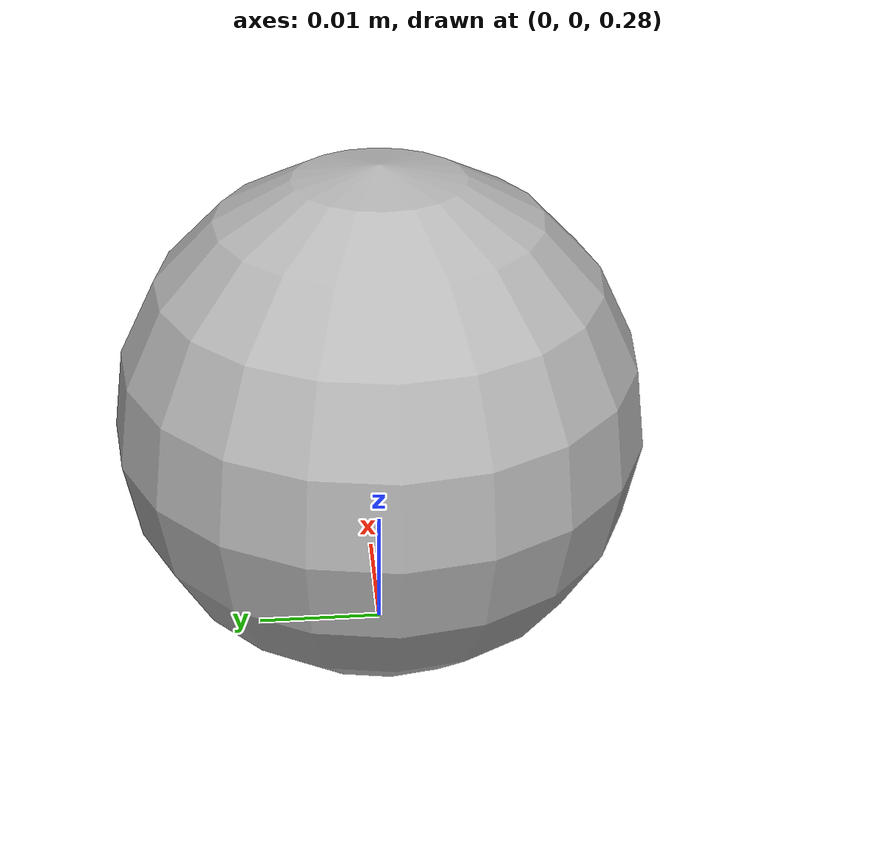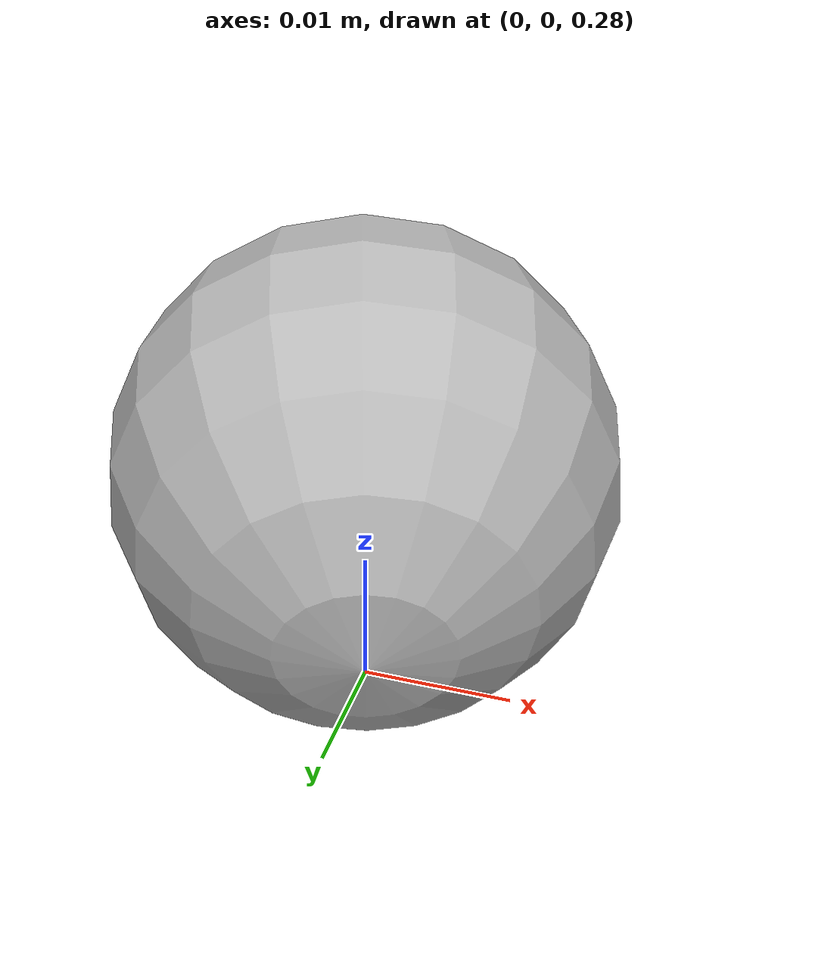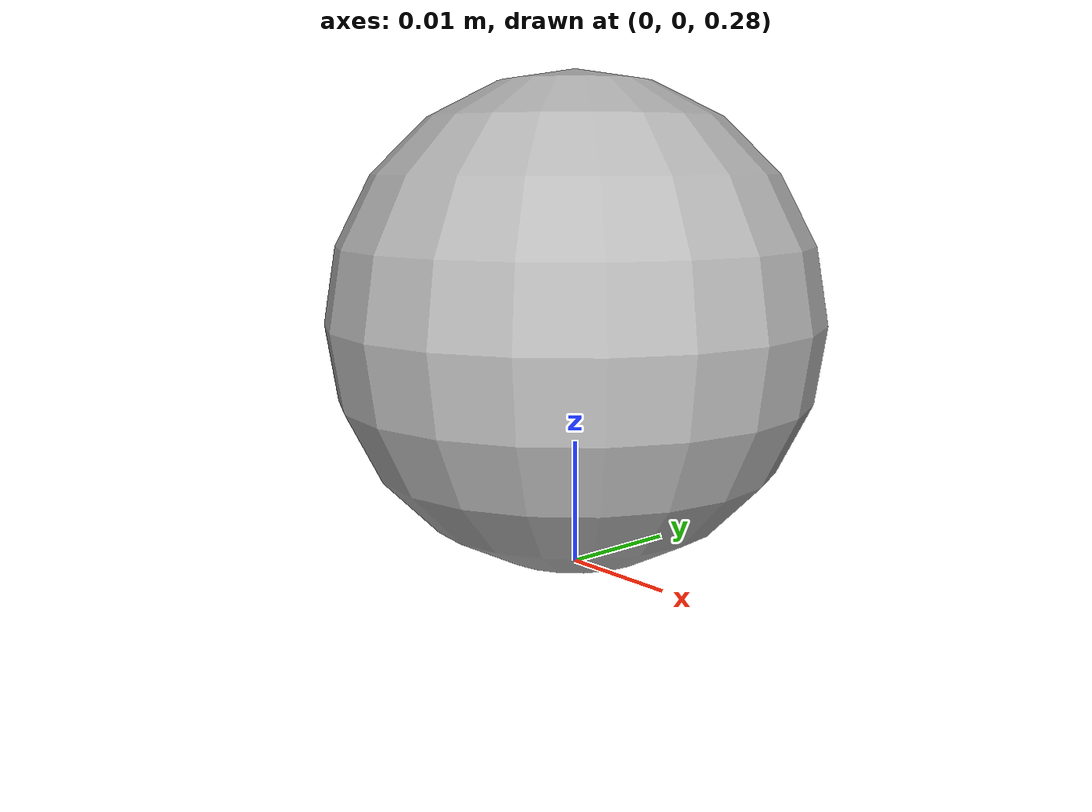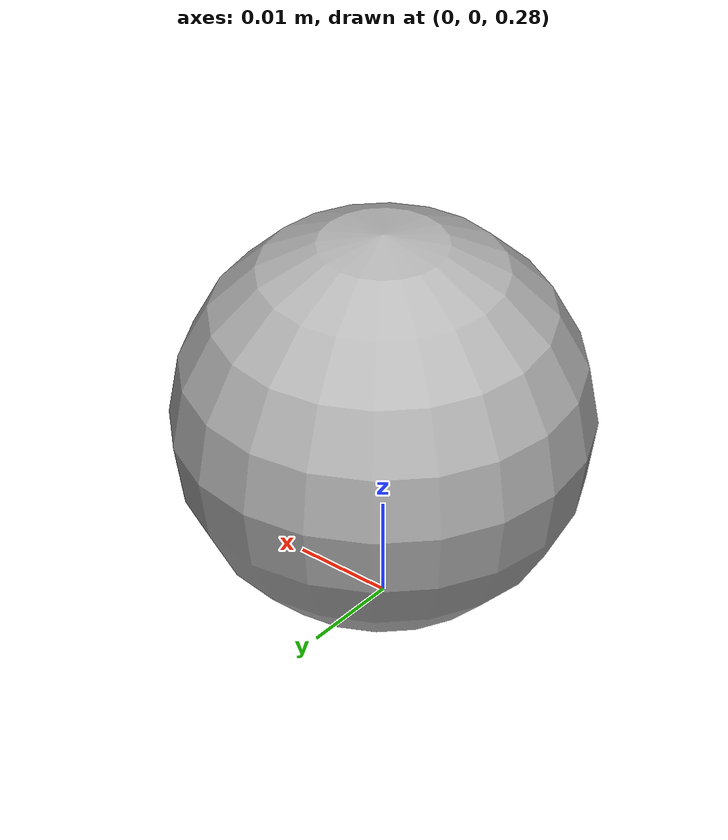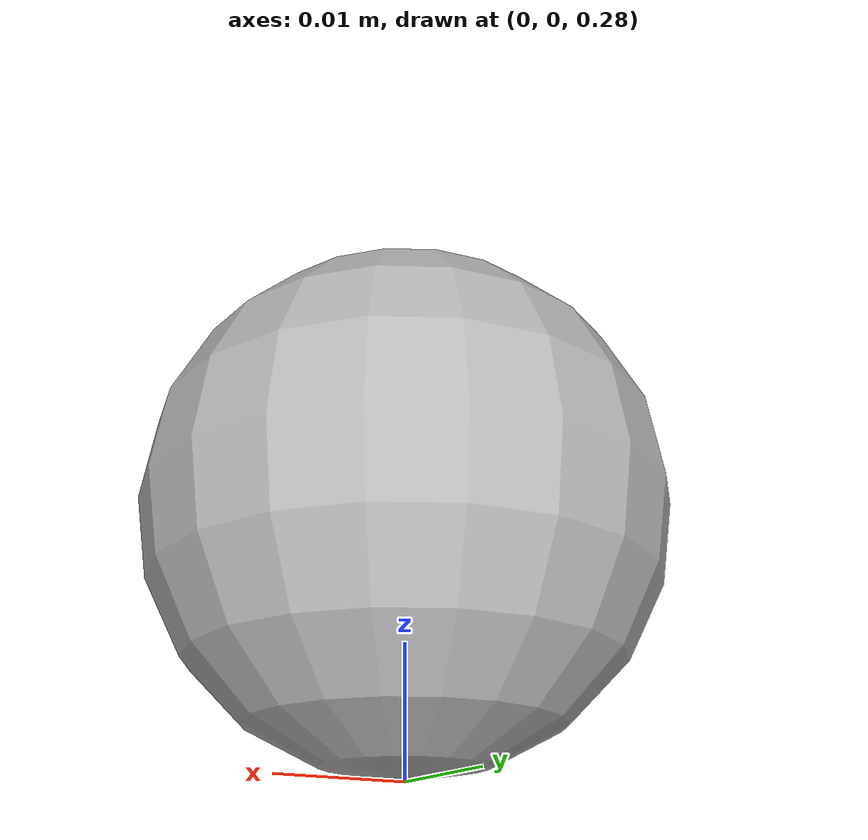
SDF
<?xml version='1.0'?>
<sdf version='1.6'>
  <model name='apple'>
    <link name='link_0'>
      <pose frame=''>-0 -0 0 0 -0 0</pose>
      <inertial>
        <mass>1</mass>
        <inertia>
          <ixx>0.1</ixx>
          <ixy>0</ixy>
          <ixz>0</ixz>
          <iyy>0.1</iyy>
          <iyz>0</iyz>
          <izz>0.1</izz>
        </inertia>
      </inertial>
      <visual name='visual'>
        <pose frame=''>0 0 0.3 0 3.14 0</pose>
        <geometry>
          <sphere>
            <radius>0.02</radius>
          </sphere>
        </geometry>
        <material>
          <lighting>1</lighting>
          <script>
	    <uri>model://apple/materials/scripts/</uri>
            <uri>model://apple/materials/textures/</uri>
            <name>apple</name>
          </script>
          <shader type='pixel'/>
          <ambient>0.8 0.8 0.8 1</ambient>
          <diffuse>0.7 0.7 0.7 1</diffuse>
          <specular>0.01 0.01 0.01 1</specular>
          <emissive>0 0 0 1</emissive>
        </material>
        <transparency>0</transparency>
        <cast_shadows>1</cast_shadows>
      </visual>
      <collision name='collision'>
        <laser_retro>0</laser_retro>
        <max_contacts>10</max_contacts>
        <pose frame=''>0 0 0 0.3 3.14 0</pose>
        <geometry>
          <sphere>
            <radius>0.02</radius>
          </sphere>
        </geometry>
        <surface>
          <friction>
            <ode>
              <mu>1</mu>
              <mu2>1</mu2>
              <fdir1>0 0 0</fdir1>
              <slip1>0</slip1>
              <slip2>0</slip2>
            </ode>
            <torsional>
              <coefficient>1</coefficient>
              <patch_radius>0</patch_radius>
              <surface_radius>0</surface_radius>
              <use_patch_radius>1</use_patch_radius>
              <ode>
                <slip>0</slip>
              </ode>
            </torsional>
          </friction>
          <bounce>
            <restitution_coefficient>0</restitution_coefficient>
            <threshold>1e+06</threshold>
          </bounce>
          <contact>
            <collide_without_contact>0</collide_without_contact>
            <collide_without_contact_bitmask>1</collide_without_contact_bitmask>
            <collide_bitmask>1</collide_bitmask>
            <ode>
              <soft_cfm>0</soft_cfm>
              <soft_erp>0.2</soft_erp>
              <kp>1e+13</kp>
              <kd>1</kd>
              <max_vel>0.01</max_vel>
              <min_depth>0</min_depth>
            </ode>
            <bullet>
              <split_impulse>1</split_impulse>
              <split_impulse_penetration_threshold>-0.01</split_impulse_penetration_threshold>
              <soft_cfm>0</soft_cfm>
              <soft_erp>0.2</soft_erp>
              <kp>1e+13</kp>
              <kd>1</kd>
            </bullet>
          </contact>
        </surface>
      </collision>
    </link>
    <static>0</static>
    <allow_auto_disable>1</allow_auto_disable>
  </model>
</sdf>
